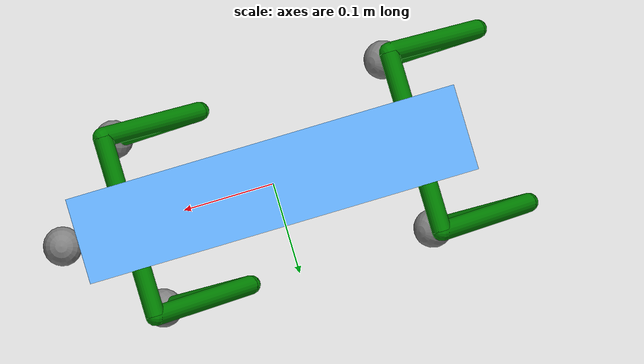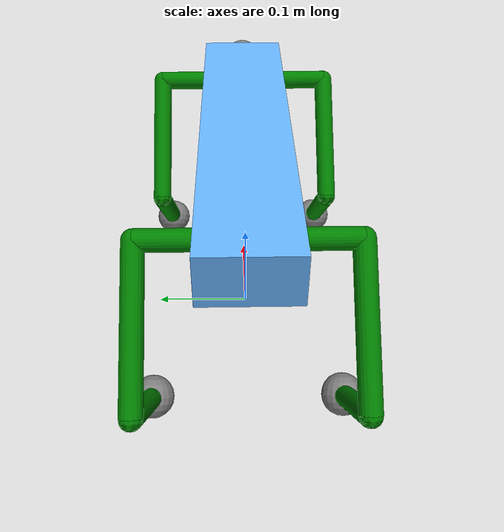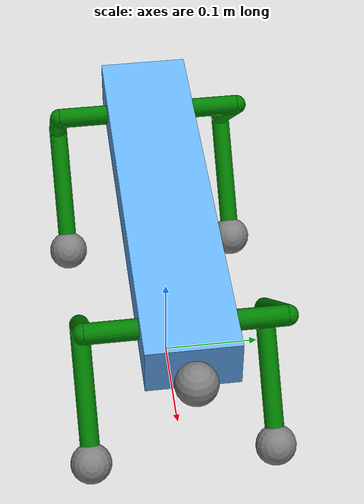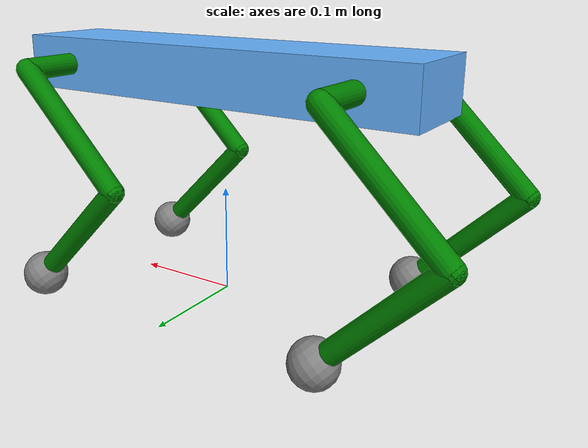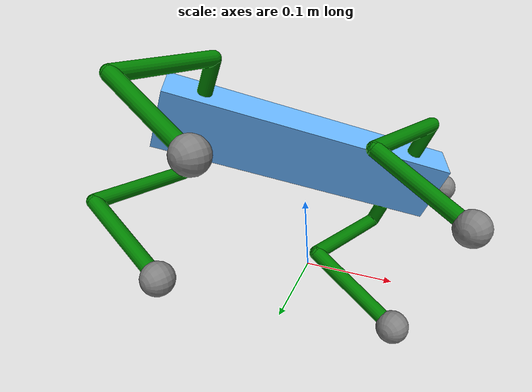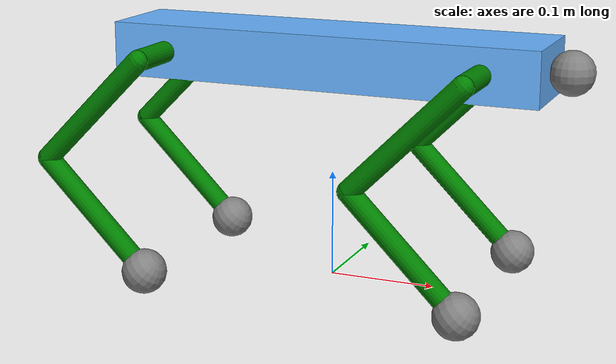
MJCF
<mujoco>

    <default>

        <default class="motor">

            <default class="hip_motor">
                <joint limited="true" range="-40 40" type="hinge"
                    pos="0 0 0" axis="0 1 0" stiffness="0" damping="0.1" armature="0.0065"/>
            </default>

            <default class="knee_motor">
                <joint limited="true" range="-30 30" type="hinge"
                    pos="0 0 0" axis="0 1 0" stiffness="0" damping="0.1" armature="0.0065"/>
            </default>

            <default class="UpLeg">
                <geom type="capsule" mass="0.055" size="0.01" fromto="0 0 0 -0.14 0 0" rgba="0.0 0.5 0.0 1"/>
            </default>

            <default class="DownLeg">
                <geom type="capsule" mass="0.055" size="0.01" fromto="0 0 0 0.14 0 0" rgba="0.0 0.5 0.0 1"/>
            </default>

            <default class="Foot">
                <geom type="sphere" mass="0" size="0.02" rgba="1.0 1.0 0.1 1" friction="2 0.02 0.01"/>
            </default>

        </default>

    </default>

    <worldbody>
        <body name="main_body" pos="0 0 0.21" euler="0 0 0">
            <joint name="rail" type="free"/>

            <geom name="box" mass="5.5" type="box" size="0.2025 0.044 0.025" rgba="0.4 0.7 1.0 1"/>
            <site name="imu" size="0.02" pos="0 0 0"/>
            <site name="head" pos=".22 0 0" size="0.02"/>

            <body name="FL" pos="0.1505 0.044 0">
                <geom name="ADAC_FL" type="cylinder" mass="0" size="0.01" fromto="0 0 0 0 0.05 0" rgba="0.0 0.5 0.0 1"/>

                <body name="UpLegFrame_FL" pos="0 0.05 0" euler="0 -45 0">
                    <joint name="HipMotor_FL" class="hip_motor" />
                    <geom name="UpLeg_FL" class="UpLeg"/>

                    <body name="DownLegFrame_FL" pos="-0.14 0 0" euler="0 90 0">
                        <joint name="KneeMotor_FL" class="knee_motor" />
                        <geom name="DownLeg_FL" class="DownLeg"/>

                        <body name="FootFrame_FL" pos="0.14 0 0">
                            <geom name="Foot_FL" class="Foot"/>
                            <site name="Foot_FL_contact" size="0.021"/>
                        </body>
                    </body>
                </body>
            </body>

            <body name="FR" pos="0.1505 -0.044 0">
                <geom name="ADAC_FR" type="cylinder" mass="0" size="0.01" fromto="0 0 0 0 -0.05 0" rgba="0.0 0.5 0.0 1"/>

                <body name="UpLegFrame_FR" pos="0 -0.05 0" euler="0 -45 0">
                    <joint name="HipMotor_FR" class="hip_motor" />
                    <geom name="UpLeg_FR" class="UpLeg"/>

                    <body name="DownLegFrame_FR" pos="-0.14 0 0" euler="0 90 0">
                        <joint name="KneeMotor_FR" class="knee_motor"/>
                        <geom name="DownLeg_FR" class="DownLeg"/>

                        <body name="FootFrame_FR" pos="0.14 0 0">
                            <geom name="Foot_FR" class="Foot"/>
                            <site name="Foot_FR_contact" size="0.021"/>
                        </body>
                    </body>
                </body>
            </body>

            <body name="RL" pos="-0.1505 0.044 0">
                <geom name="ADAC_RL" type="cylinder" mass="0" size="0.01" fromto="0 0 0 0 0.05 0" rgba="0.0 0.5 0.0 1"/>

                <body name="UpLegFrame_RL" pos="0 0.05 0" euler="0 -45 0">
                    <joint name="HipMotor_RL" class="hip_motor" />
                    <geom name="UpLeg_RL" class="UpLeg"/>

                    <body name="DownLegFrame_RL" pos="-0.14 0 0" euler="0 90 0">
                        <joint name="KneeMotor_RL" class="knee_motor" />
                        <geom name="DownLeg_RL" class="DownLeg"/>

                        <body name="FootFrame_RL" pos="0.14 0 0">
                            <geom name="Foot_RL" class="Foot"/>
                            <site name="Foot_RL_contact" size="0.021"/>
                        </body>
                    </body>
                </body>
            </body>

            <body name="RR" pos="-0.1505 -0.044 0">
                <geom name="ADAC_RR" type="cylinder" mass="0" size="0.01" fromto="0 0 0 0 -0.05 0" rgba="0.0 0.5 0.0 1"/>

                <body name="UpLegFrame_RR" pos="0 -0.05 0" euler="0 -45 0">
                    <joint name="HipMotor_RR" class="hip_motor" />
                    <geom name="UpLeg_RR" class="UpLeg"/>

                    <body name="DownLegFrame_RR" pos="-0.14 0 0" euler="0 90 0">
                        <joint name="KneeMotor_RR" class="knee_motor" />
                        <geom name="DownLeg_RR" class="DownLeg"/>

                        <body name="FootFrame_RR" pos="0.14 0 0">
                            <geom name="Foot_RR" class="Foot"/>
                            <site name="Foot_RR_contact" size="0.021"/>
                        </body>
                    </body>
                </body>
            </body>

        </body>

    </worldbody>

</mujoco>
